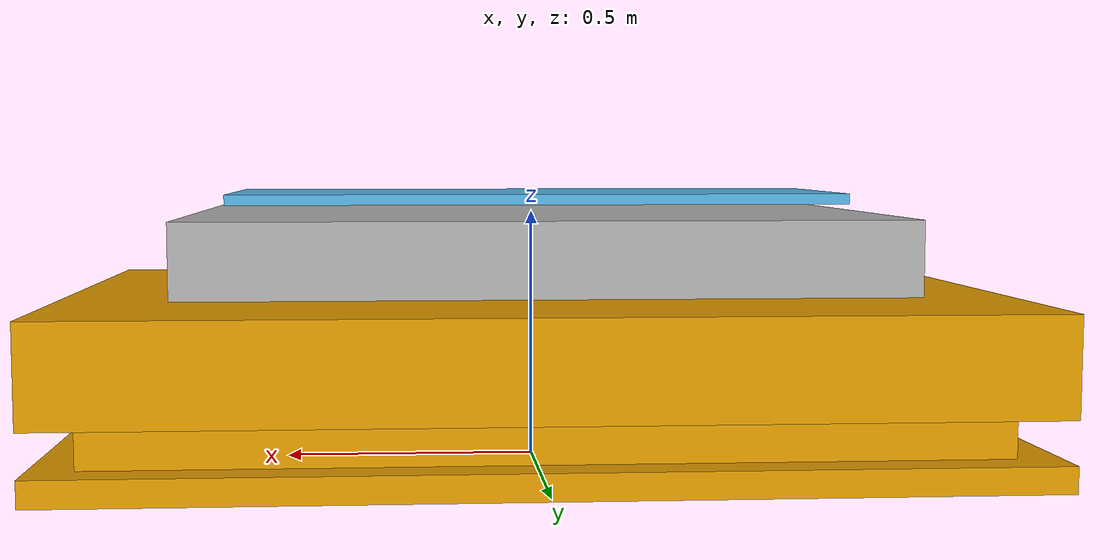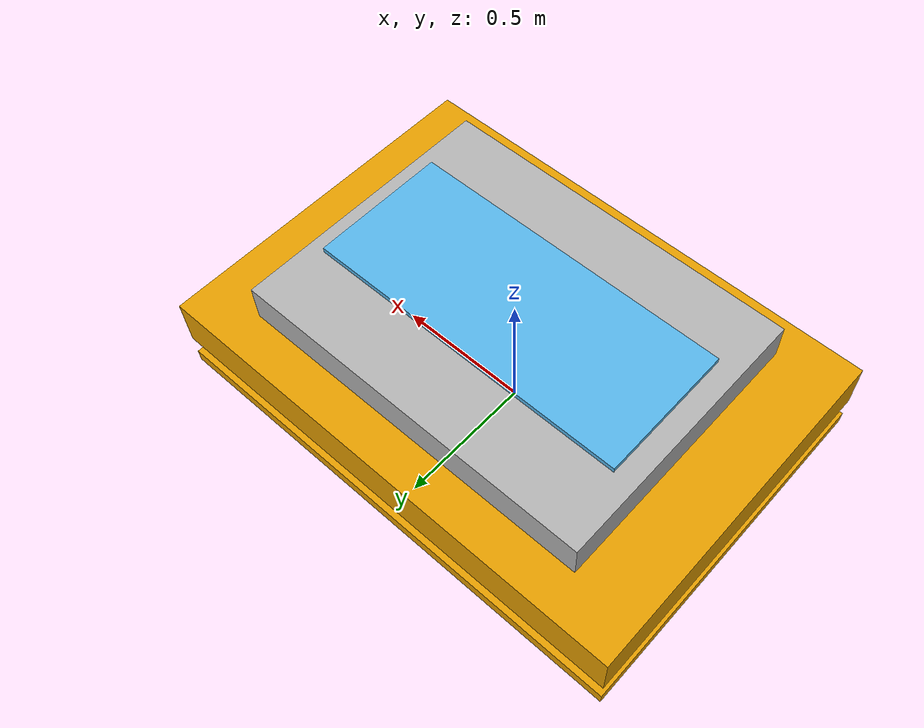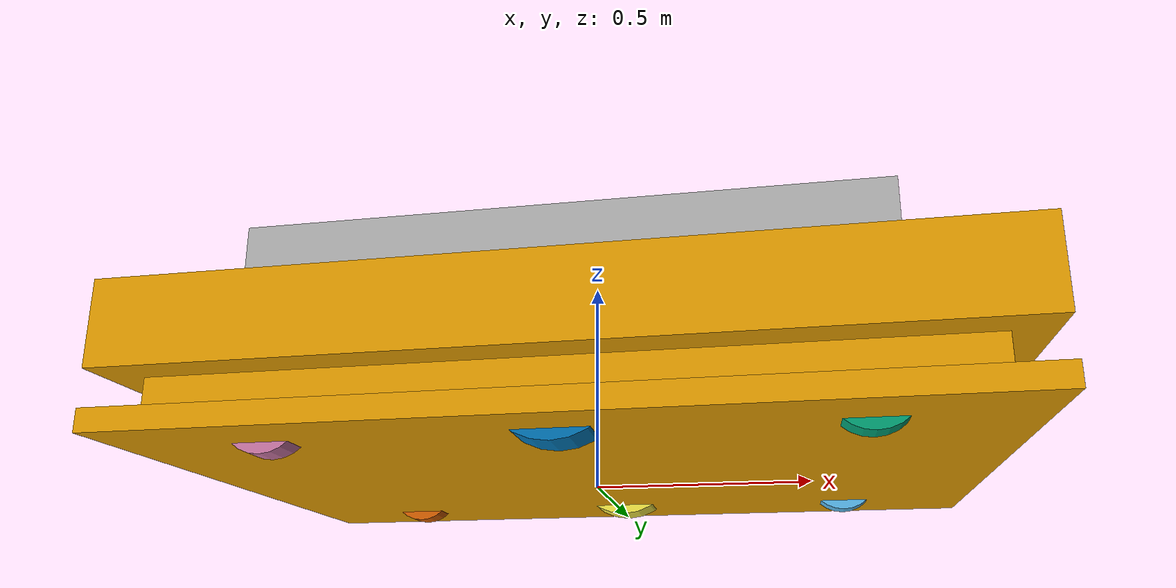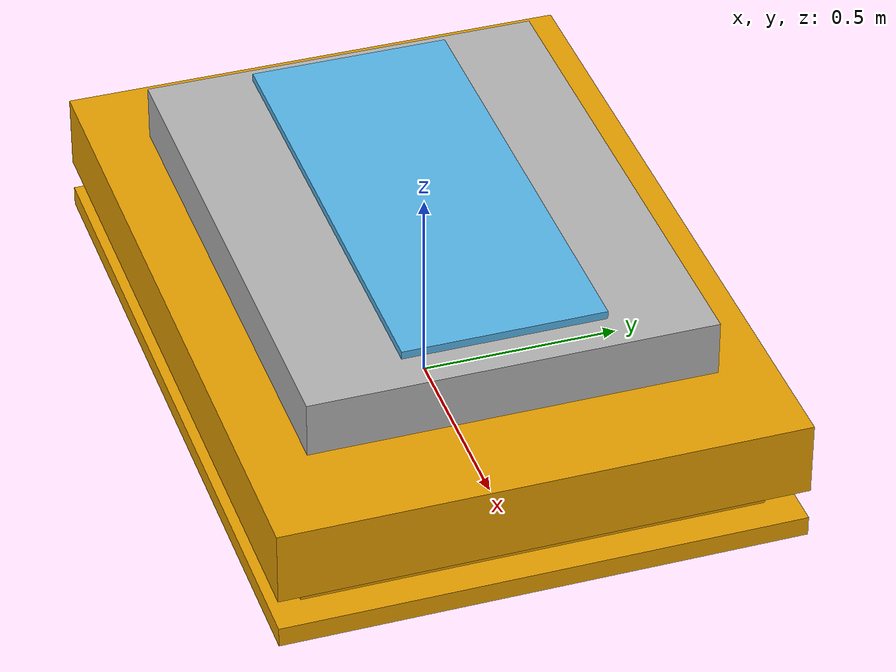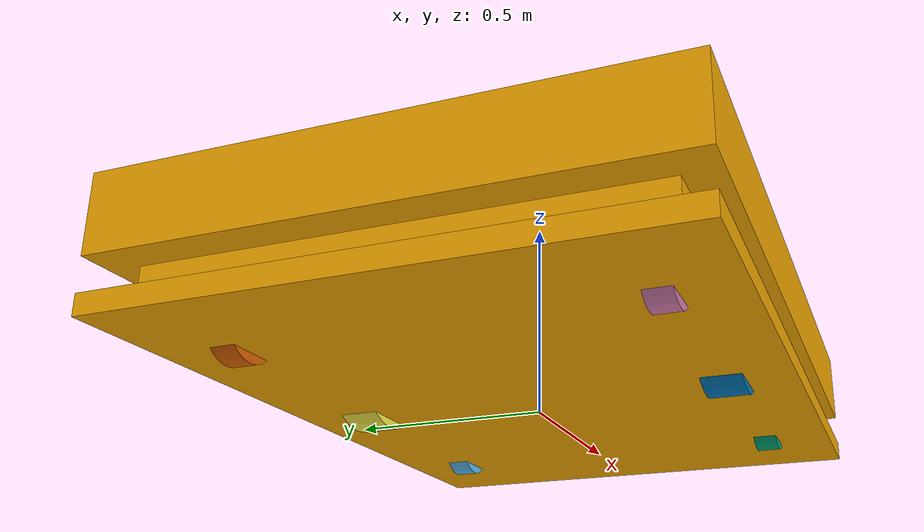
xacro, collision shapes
<?xml version="1.0"?>
<robot xmlns:xacro="http://www.ros.org/wiki/xacro" name="OTTO1500">

  <xacro:property name="base_link_width" value="1.29" />
  <xacro:property name="base_link_length" value="1.83" />
  <xacro:property name="base_link_height" value="0.32" />
  <xacro:property name="base_link_box_height" value=".391179" />

  <xacro:property name="wheel_axis_front" value="0.601175" />
  <xacro:property name="wheel_axis_rear" value="-0.601175" />
  <xacro:property name="wheel_track" value="0.475812" />

  <xacro:property name="wheel_front_rear_radius" value="0.09" />
  <xacro:property name="wheel_front_rear_length" value="0.061434" />
  <xacro:property name="wheel_center_radius" value="0.147" />
  <xacro:property name="wheel_center_length" value="0.1" />

  <xacro:property name="lift_base_width" value="1." />
  <xacro:property name="lift_base_length" value="1.35" />
  <xacro:property name="lift_base_height" value="0.14" />
  <xacro:property name="lift_base_offset" value="0.04" />
  <xacro:property name="lift_base_collider_offset" value="0.07" />

  <xacro:property name="lift_upper_width" value="0.5" />
  <xacro:property name="lift_upper_length" value="1.2" />
  <xacro:property name="lift_upper_height" value="0.02" />

  <xacro:property name="upper_lift_limit" value="0.3" />
  <xacro:property name="lift_module_height" value="0.14" />
  <xacro:property name="lift_module_offset" value="0.02" />

  <xacro:property name="camera_height" value="0.22" />
  <xacro:property name="camera_center_offset" value="0.51" />

  <xacro:property name="lidar_height" value="0.1" />

  <link name="base_link">
    <inertial>
      <origin xyz="0. 0. 0." />
      <mass value="597" />
      <inertia ixx="88.0222" ixy="0." ixz="0." iyy="174.014" iyz="0." izz="249.778"/>
    </inertial>
    <visual>
      <origin rpy="0. 0. ${pi/2}" xyz="0. 0. 0."/>
      <geometry>
        <mesh filename="../meshes/OTTO1500_bodylink.stl" scale="1.0 1.0 1.0" />
      </geometry>
    </visual>
    <!-- bottom collider box -->
    <collision>
      <origin rpy="0. 0. ${pi/2}" xyz="0. 0. 0.049"/>
      <geometry>
        <box size="${base_link_width} ${base_link_length} 0.05" />
      </geometry>
    </collision>
    <!-- center collider box -->
    <collision>
      <origin rpy="0. 0. ${pi/2}" xyz="0. 0. 0.114"/>
      <geometry>
        <box size="1.135 1.663 0.079" />
      </geometry>
    </collision>
    <!-- top collider box -->
    <collision>
      <origin rpy="0. 0. ${pi/2}" xyz="0. 0. 0.248"/>
      <geometry>
        <box size="${base_link_width} ${base_link_length} 0.187" />
      </geometry>
    </collision>
  </link>

  <!-- Wheel front left -->
  <link name="wheel_FL">
    <inertial>
      <origin xyz="0. 0. 0." />
      <mass value="5" />
      <inertia ixx="0.0116976" ixy="0." ixz="0." iyy="0.02025" iyz="0." izz="0.0116976"/>
    </inertial>
    <visual>
      <origin rpy="0. 0. ${pi/2}" xyz="0. 0. ${-wheel_front_rear_radius}"/>
      <geometry>
        <mesh filename="../meshes/OTTO1500_wheel_front_rear.stl" scale="1.0 1.0 1.0" />
      </geometry>
    </visual>
    <collision>
      <origin rpy="${pi/2} ${pi/2} 0." xyz="0. 0. 0."/>
      <geometry>
        <cylinder radius="${wheel_front_rear_radius}" length="${wheel_front_rear_length}"/>
      </geometry>
    </collision>
  </link>
  <joint name="wheel_FL_joint" type="continuous">
    <parent link="base_link" />
    <child link="wheel_FL" />
    <axis xyz="0. 1. 0." />
    <origin rpy="0. 0. 0." xyz="${wheel_axis_front} ${wheel_track} ${wheel_front_rear_radius}" />
  </joint>

  <link name="wheel_FR">
    <inertial>
      <origin xyz="0. 0. 0." />
      <mass value="5" />
      <inertia ixx="0.0116976" ixy="0." ixz="0." iyy="0.02025" iyz="0." izz="0.0116976"/>
    </inertial>
    <visual>
      <origin rpy="0. 0. ${pi/2}" xyz="0. 0. ${-wheel_front_rear_radius}"/>
      <geometry>
        <mesh filename="../meshes/OTTO1500_wheel_front_rear.stl" scale="1.0 1.0 1.0" />
      </geometry>
    </visual>
    <collision>
      <origin rpy="${pi/2} ${pi/2} 0." xyz="0. 0. 0."/>
      <geometry>
        <cylinder radius="${wheel_front_rear_radius}" length="${wheel_front_rear_length}"/>
      </geometry>
    </collision>
  </link>
  <joint name="wheel_FR_joint" type="continuous">
    <parent link="base_link" />
    <child link="wheel_FR" />
    <axis xyz="0. 1. 0." />
    <origin rpy="0. 0. 0." xyz="${wheel_axis_front} ${-wheel_track} ${wheel_front_rear_radius}" />
  </joint>

  <link name="wheel_CL">
    <inertial>
      <origin xyz="0. 0. 0." />
      <mass value="5" />
      <inertia ixx="0.0311779" ixy="0." ixz="0." iyy="0.0540225" iyz="0." izz="0.0311779"/>
    </inertial>
    <visual>
      <origin rpy="0. 0. ${pi/2}" xyz="0. 0. ${-wheel_center_radius}"/>
      <geometry>
        <mesh filename="../meshes/OTTO1500_wheel_center.stl" scale="1.0 1.0 1.0" />
      </geometry>
    </visual>
    <collision>
      <origin rpy="${pi/2} ${pi/2} 0." xyz="0. 0. 0."/>
      <geometry>
        <cylinder radius="${wheel_center_radius}" length="${wheel_center_length}"/>
      </geometry>
    </collision>
  </link>
  <joint name="wheel_CL_joint" type="continuous">
    <parent link="base_link" />
    <child link="wheel_CL" />
    <axis xyz="0. 1. 0." />
    <origin rpy="0. 0. 0." xyz="0. ${wheel_track} ${wheel_center_radius}" />
  </joint>

  <link name="wheel_CR">
    <inertial>
      <origin xyz="0. 0. 0." />
      <mass value="5" />
      <inertia ixx="0.0311779" ixy="0." ixz="0." iyy="0.0540225" iyz="0." izz="0.0311779"/>
    </inertial>
    <visual>
      <origin rpy="0. 0. ${pi/2}" xyz="0. 0. ${-wheel_center_radius}"/>
      <geometry>
        <mesh filename="../meshes/OTTO1500_wheel_center.stl" scale="1.0 1.0 1.0" />
      </geometry>
    </visual>
    <collision>
      <origin rpy="${pi/2} ${pi/2} 0." xyz="0. 0. 0."/>
      <geometry>
        <cylinder radius="${wheel_center_radius}" length="${wheel_center_length}"/>
      </geometry>
    </collision>
  </link>
  <joint name="wheel_CR_joint" type="continuous">
    <parent link="base_link" />
    <child link="wheel_CR" />
    <axis xyz="0. 1. 0." />
    <origin rpy="0. 0. 0." xyz="0. ${-wheel_track} ${wheel_center_radius}" />
  </joint>

  <link name="wheel_RL">
    <inertial>
      <origin xyz="0. 0. 0." />
      <mass value="5" />
      <inertia ixx="0.0116976" ixy="0." ixz="0." iyy="0.02025" iyz="0." izz="0.0116976"/>
    </inertial>
    <visual>
      <origin rpy="0. 0. ${pi/2}" xyz="0. 0. ${-wheel_front_rear_radius}"/>
      <geometry>
        <mesh filename="../meshes/OTTO1500_wheel_front_rear.stl" scale="1.0 1.0 1.0" />
      </geometry>
    </visual>
    <collision>
      <origin rpy="${pi/2} ${pi/2} 0." xyz="0. 0. 0."/>
      <geometry>
        <cylinder radius="${wheel_front_rear_radius}" length="${wheel_front_rear_length}"/>
      </geometry>
    </collision>
  </link>
  <joint name="wheel_RL_joint" type="continuous">
    <parent link="base_link" />
    <child link="wheel_RL" />
    <axis xyz="0. 1. 0." />
    <origin rpy="0. 0. 0." xyz="${wheel_axis_rear} ${wheel_track} ${wheel_front_rear_radius}" />
  </joint>

  <link name="wheel_RR">
    <inertial>
      <origin xyz="0. 0. 0." />
      <mass value="5" />
      <inertia ixx="0.0116976" ixy="0." ixz="0." iyy="0.02025" iyz="0." izz="0.0116976"/>
    </inertial>
    <visual>
      <origin rpy="0. 0. ${pi/2}" xyz="0. 0. ${-wheel_front_rear_radius}"/>
      <geometry>
        <mesh filename="../meshes/OTTO1500_wheel_front_rear.stl" scale="1.0 1.0 1.0" />
      </geometry>
    </visual>
    <collision>
      <origin rpy="${pi/2} ${pi/2} 0." xyz="0. 0. 0."/>
      <geometry>
        <cylinder radius="${wheel_front_rear_radius}" length="${wheel_front_rear_length}"/>
      </geometry>
    </collision>
  </link>
  <joint name="wheel_RR_joint" type="continuous">
    <parent link="base_link" />
    <child link="wheel_RR" />
    <axis xyz="0. 1. 0." />
    <origin rpy="0. 0. 0." xyz="${wheel_axis_rear} ${-wheel_track} ${wheel_front_rear_radius}" />
  </joint>

  <link name="lifting_platform_base">
    <inertial>
      <origin xyz="0. 0. 0." />
      <mass value="15" />
      <inertia ixx="1.2745" ixy="0." ixz="0." iyy="2.30263" iyz="0." izz="3.52813"/>
    </inertial>
    <visual>
      <origin rpy="0. 0. ${pi/2}" xyz="0. 0. ${base_link_height + lift_base_offset}"/>
      <geometry>
        <mesh filename="../meshes/Platform_B.stl" scale="1.0 1.0 1.0" />
      </geometry>
    </visual>
    <collision>=
      <origin rpy="0. 0. ${pi/2}" xyz="0. 0. ${base_link_height + lift_base_offset + lift_base_collider_offset}"/>
      <geometry>
        <box size="${lift_base_width} ${lift_base_length} ${lift_base_height}" />
      </geometry>
    </collision>
  </link>
  <joint name="platform_base_joint" type="fixed">
    <parent link="base_link" />
    <child link="lifting_platform_base" />
    <origin rpy="0. 0. 0." xyz="0. 0. 0." />
  </joint>

  <link name="lift_module">
    <inertial>
      <origin xyz="0. 0. 0." />
      <mass value="15" />
      <inertia ixx="1." ixy="0." ixz="0." iyy="1." iyz="0." izz="1."/>
    </inertial>
    <visual>
      <origin rpy="0. 0. ${pi/2}" xyz="0. 0. 0."/>
      <geometry>
        <mesh filename="../meshes/lift.stl" scale="1.0 1.0 1.0" />
      </geometry>
    </visual>
  </link>
  <joint name="lift_module_joint" type="fixed">
    <parent link="base_link" />
    <child link="lift_module" />
    <origin rpy="0. 0. 0." xyz="0. 0. ${base_link_height + lift_base_offset + lift_module_offset}" />
  </joint>

  <link name="lift_upper">
    <inertial>
      <origin xyz="0. 0. 0." />
      <mass value="15" />
      <inertia ixx="0.313" ixy="0." ixz="0." iyy="1.8005" iyz="0." izz="2.1125"/>
    </inertial>
    <visual>
      <origin rpy="0. 0. ${pi/2}" xyz="0. 0. ${base_link_box_height + lift_module_height}"/>
      <geometry>
        <mesh filename="../meshes/lift_upper.stl" scale="1.0 1.0 1.0" />
      </geometry>
    </visual>
    <collision>
      <origin rpy="0. 0. ${pi/2}" xyz="0. 0. ${base_link_box_height + lift_module_height}"/>
      <geometry>
        <box size="${lift_upper_width} ${lift_upper_length} ${lift_upper_height}" />
      </geometry>
    </collision>
  </link>
  <joint name="lift_upper_joint" type="prismatic">
    <parent link="base_link" />
    <child link="lift_upper" />
    <axis xyz="0. 0. 1." />
    <origin rpy="0. 0. 0." xyz="0. 0. 0." />
    <limit lower="0.0" upper="${upper_lift_limit}" effort="0.0" velocity="0.0"/>
  </joint>

  <link name="lidar_F" />
  <joint name="lidar_F_joint" type="fixed">
    <parent link="base_link" />
    <child link="lidar_F" />
    <origin rpy="0. 0. 0." xyz="${base_link_length * 0.47} ${base_link_width * 0.47} ${lidar_height}" />
  </joint>

  <link name="lidar_R" />
  <joint name="lidar_R_joint" type="fixed">
    <parent link="base_link" />
    <child link="lidar_R" />
    <origin rpy="0. 0. 0." xyz="${-base_link_length * 0.47} ${-base_link_width * 0.47} ${lidar_height}" />
  </joint>

  <link name="camera_FL" />
  <joint name="camera_FL_joint" type="fixed">
    <parent link="base_link" />
    <child link="camera_FL" />
    <origin rpy="0. 0. 0." xyz="${base_link_length / 2} ${camera_center_offset} ${camera_height}" />
  </joint>

  <link name="camera_FR" />
  <joint name="camera_FR_joint" type="fixed">
    <parent link="base_link" />
    <child link="camera_FR" />
    <origin rpy="0. 0. 0." xyz="${base_link_length / 2} ${-camera_center_offset} ${camera_height}" />
  </joint>

  <link name="camera_RL" />
  <joint name="camera_RL_joint" type="fixed">
    <parent link="base_link" />
    <child link="camera_RL" />
    <origin rpy="0. 0. 0." xyz="${-base_link_length / 2} ${camera_center_offset} ${camera_height}" />
  </joint>

  <link name="camera_RR" />
  <joint name="camera_RR_joint" type="fixed">
    <parent link="base_link" />
    <child link="camera_RR" />
    <origin rpy="0. 0. 0." xyz="${-base_link_length / 2} ${-camera_center_offset} ${camera_height}" />
  </joint>

</robot>
